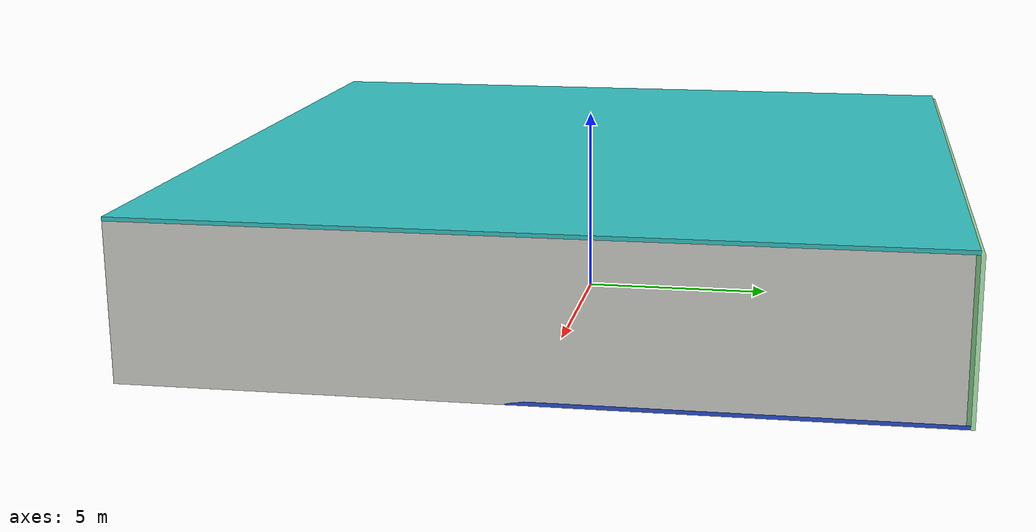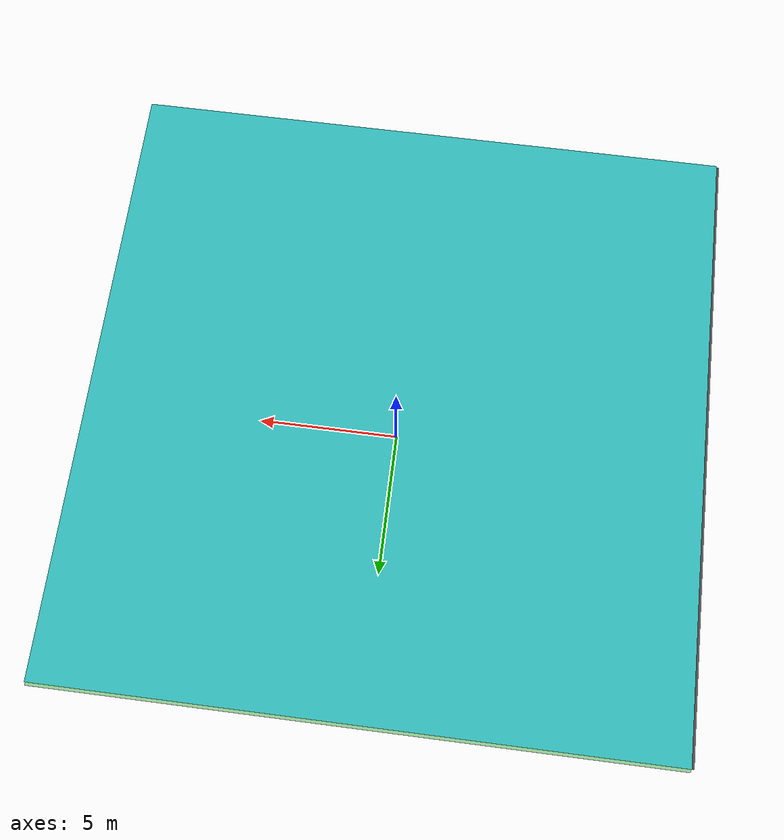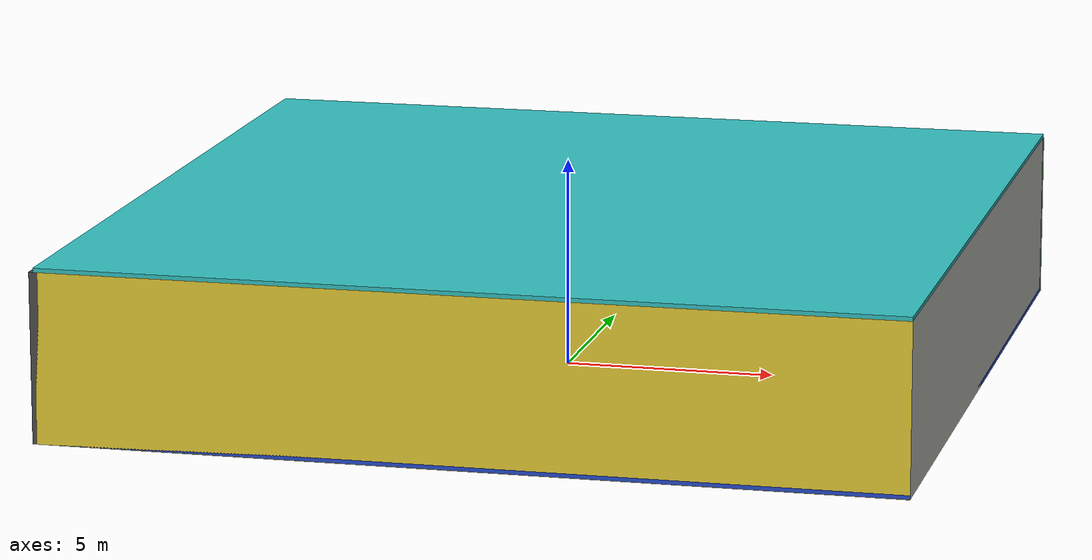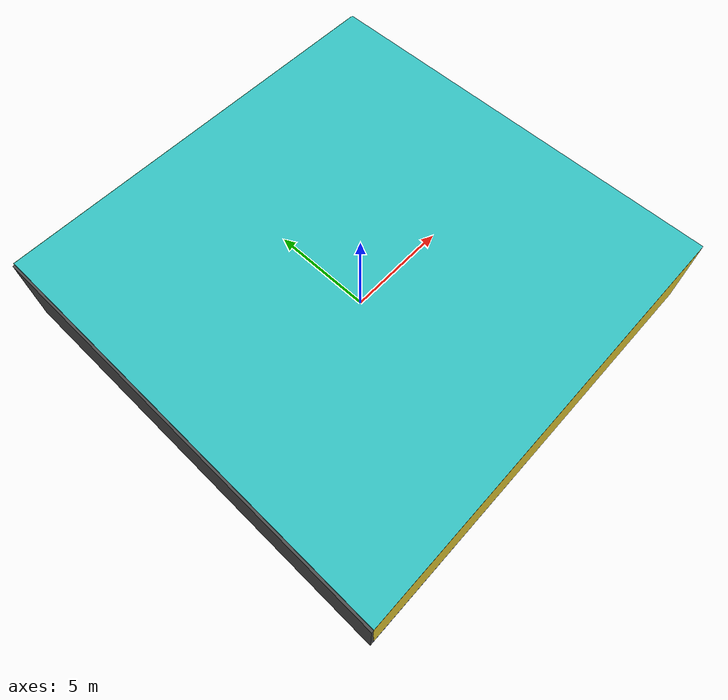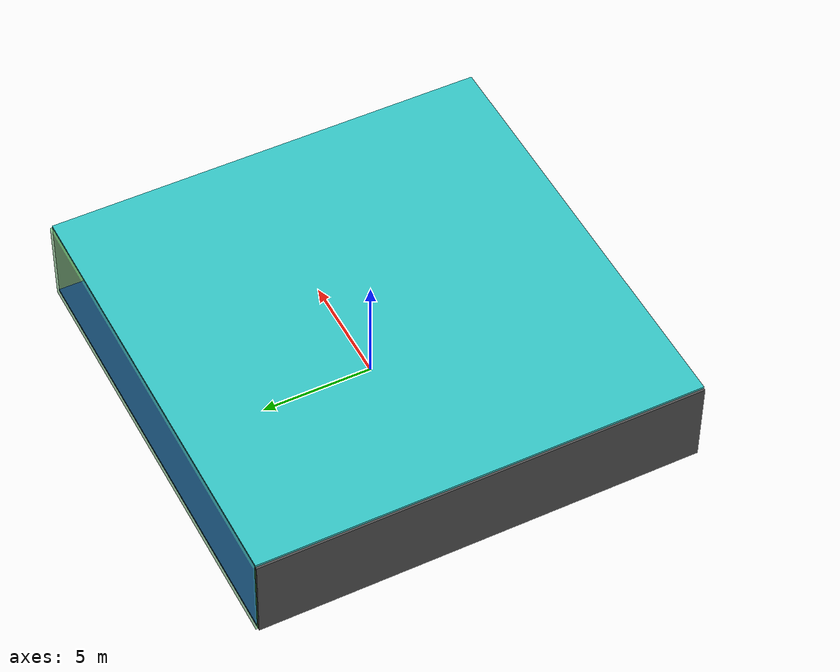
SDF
<sdf version="1.4">
 <world name="default">
  <physics type="ode">
   <max_step_size>0.001</max_step_size>
   <real_time_factor>1</real_time_factor>
   <real_time_update_rate>1000</real_time_update_rate>
   <gravity>0 0 -9.8</gravity>
  </physics>
  <scene><ambient>0.4 0.4 0.4 1</ambient><background>0.7 0.7 0.7 1</background><shadows>1</shadows></scene>
  <model name="Surrounding">
   <static>1</static>
   <link name="Ceiling">
    <collision name="Ceiling_Collision"><geometry><box><size>20 20 0.1</size></box></geometry></collision>
    <visual name="Ceiling_Visual">
     <geometry><box><size>20 20 0.1</size></box></geometry>
     <material>
      <script><uri>file://media/materials/scripts/gazebo.material</uri><name>Gazebo/Turquoise</name></script>
     </material>
    </visual>
    <pose>0 0 4.05 0 0 0</pose>
   </link>
   <link name="Wall_South">
    <collision name="Wall_South_Collision">
     <geometry><box><size>20 0 4</size></box></geometry>
     <pose>0 0 2 0 -0 0</pose>
    </collision>
    <visual name="Wall_South_Visual">
     <pose>0 0 2 0 -0 0</pose>
     <geometry><box><size>20 0 4</size></box></geometry>
     <material>
      <script><uri>file://media/materials/scripts/gazebo.material</uri><name>Gazebo/ZincYellow</name></script>
     </material>
    </visual>
    <velocity_decay><linear>0</linear><angular>0</angular></velocity_decay>
    <pose>0 -10 0 0 -0 0</pose>
   </link>
   <link name="Wall_East">
    <collision name="Wall_21_Collision">
     <geometry><box><size>20 0 4</size></box></geometry>
     <pose>0 0 2 0 -0 0</pose>
    </collision>
    <visual name="Wall_21_Visual">
     <pose>0 0 2 0 -0 0</pose>
     <geometry><box><size>20 0 4</size></box></geometry>
     <material>
      <script><uri>file://media/materials/scripts/gazebo.material</uri><name>Gazebo/CeilingTiled</name></script>
     </material>
    </visual>
    <velocity_decay><linear>0</linear><angular>0</angular></velocity_decay>
    <pose>10 0 0 0 -0 1.5708</pose>
   </link>
   <link name="Wall_North">
    <collision name="Wall_22_Collision">
     <geometry><box><size>20 0.2 4</size></box></geometry>
     <pose>0 0 2 0 -0 0</pose>
    </collision>
    <visual name="Wall_22_Visual">
     <pose>0 0 2 0 -0 0</pose>
     <geometry><box><size>20 0.2 4</size></box></geometry>
     <material>
      <script><uri>file://media/materials/scripts/gazebo.material</uri><name>Gazebo/GreenTransparent</name></script>
     </material>
    </visual>
    <velocity_decay><linear>0</linear><angular>0</angular></velocity_decay>
    <pose>0 10 0 0 -0 0</pose>
   </link>
   <link name="Wall_West">
    <collision name="Wall_23_Collision">
     <geometry><box><size>20 0.2 4</size></box></geometry>
     <pose>0 0 2 0 -0 0</pose>
    </collision>
    <visual name="Wall_23_Visual">
     <pose>0 0 2 0 -0 0</pose>
     <geometry><box><size>20 0.2 4</size></box></geometry>
     <material>
      <script><uri>file://media/materials/scripts/gazebo.material</uri><name>Gazebo/Road</name></script>
     </material>
    </visual>
    <velocity_decay><linear>0</linear><angular>0</angular></velocity_decay>
    <pose>-10 0 0 0 0 -1.5708</pose>
   </link>
   <link name="Ground_link">
    <collision name="collision">
     <pose>0 0 .05 0 -0 0</pose>
     <geometry><box><size>20 20 0.1</size></box></geometry>
    </collision>
    <visual name="visual">
     <pose>0 0 .05 0 -0 0</pose>
     <geometry><box><size>20 20 0.1</size></box></geometry>
     <material>
      <script><uri>file://media/materials/scripts/gazebo.material</uri><name>Gazebo/BlueLaser</name></script>
     </material>
    </visual>
   </link>
   <static>1</static>
  </model>
  <spherical_coordinates>
   <surface_model>EARTH_WGS84</surface_model>
   <latitude_deg>0</latitude_deg>
   <longitude_deg>0</longitude_deg>
   <elevation>0</elevation>
   <heading_deg>0</heading_deg>
  </spherical_coordinates>
  <light name="lightball_0" type="diffuse">
   <diffuse>0.8 0.8 0.8 1</diffuse>
   <specular>0.2 0.2 0.2 1</specular>
   <attenuation>
    <range>100</range>
    <constant>0.7</constant>
    <linear>0.01</linear>
    <quadratic>0.001</quadratic>
   </attenuation>
   <direction>-0.5 0.1 -0.9</direction>
   <pose>4.33929590671 4.99112880412 1.9238462374 0 0 0</pose>
  </light>
  <light name="lightball_1" type="diffuse">
   <diffuse>0.8 0.8 0.8 1</diffuse>
   <specular>0.2 0.2 0.2 1</specular>
   <attenuation>
    <range>100</range>
    <constant>0.7</constant>
    <linear>0.01</linear>
    <quadratic>0.001</quadratic>
   </attenuation>
   <direction>-0.5 0.1 -0.9</direction>
   <pose>6.16327112494 -7.11508010884 1.40741019209 0 0 0</pose>
  </light>
  <light name="lightball_2" type="diffuse">
   <diffuse>0.8 0.8 0.8 1</diffuse>
   <specular>0.2 0.2 0.2 1</specular>
   <attenuation>
    <range>100</range>
    <constant>0.7</constant>
    <linear>0.01</linear>
    <quadratic>0.001</quadratic>
   </attenuation>
   <direction>-0.5 0.1 -0.9</direction>
   <pose>-0.376357403362 -5.62905709473 3.41418604243 0 0 0</pose>
  </light>
  <light name="lightball_3" type="diffuse">
   <diffuse>0.8 0.8 0.8 1</diffuse>
   <specular>0.2 0.2 0.2 1</specular>
   <attenuation>
    <range>100</range>
    <constant>0.7</constant>
    <linear>0.01</linear>
    <quadratic>0.001</quadratic>
   </attenuation>
   <direction>-0.5 0.1 -0.9</direction>
   <pose>6.05139655527 9.34792989142 2.9736816012 0 0 0</pose>
  </light>
  <light name="lightball_4" type="diffuse">
   <diffuse>0.8 0.8 0.8 1</diffuse>
   <specular>0.2 0.2 0.2 1</specular>
   <attenuation>
    <range>100</range>
    <constant>0.7</constant>
    <linear>0.01</linear>
    <quadratic>0.001</quadratic>
   </attenuation>
   <direction>-0.5 0.1 -0.9</direction>
   <pose>-3.34167047395 4.87268386588 1.87027798583 0 0 0</pose>
  </light>
  <light name="lightball_5" type="diffuse">
   <diffuse>0.8 0.8 0.8 1</diffuse>
   <specular>0.2 0.2 0.2 1</specular>
   <attenuation>
    <range>100</range>
    <constant>0.7</constant>
    <linear>0.01</linear>
    <quadratic>0.001</quadratic>
   </attenuation>
   <direction>-0.5 0.1 -0.9</direction>
   <pose>9.83315628973 -1.64379171181 0.932661661064 0 0 0</pose>
  </light>
  <include><uri>model://table</uri><pose>-2.52189660515 -0.627005629123 0 0 0 1.21296460736</pose></include>
  <include>
   <uri>model://textured_shapes</uri>
   <pose>1.42854516741 1.38383986283 0 0 0 0.980182752546</pose>
  </include>
 </world>
</sdf>

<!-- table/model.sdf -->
<sdf version="1.5">
  <model name="table">
    <static>true</static>
    <link name="link">
      <collision name="surface">
        <pose>0 0 1.0 0 0 0</pose>
        <geometry>
          <box>
            <size>1.5 0.8 0.03</size>
          </box>
        </geometry>
        <surface>
          <friction>
            <ode>
              <mu>0.6</mu>
              <mu2>0.6</mu2>
            </ode>
          </friction>
        </surface>
      </collision>
      <visual name="visual1">
        <pose>0 0 1.0 0 0 0</pose>
        <geometry>
          <box>
            <size>1.5 0.8 0.03</size>
          </box>
        </geometry>
        <material>
          <script>
            <uri>model://media/materials/scripts/gazebo.material</uri>
            <name>Gazebo/Wood</name>
          </script>
        </material>
      </visual>
      <collision name="front_left_leg">
        <pose>0.68 0.38 0.5 0 0 0</pose>
        <geometry>
          <cylinder>
            <radius>0.02</radius>
            <length>1.0</length>
          </cylinder>
        </geometry>
      </collision>
      <visual name="front_left_leg">
        <pose>0.68 0.38 0.5 0 0 0</pose>
        <geometry>
          <cylinder>
            <radius>0.02</radius>
            <length>1.0</length>
          </cylinder>
        </geometry>
        <material>
          <script>
            <uri>model://media/materials/scripts/gazebo.material</uri>
            <name>Gazebo/Grey</name>
          </script>
        </material>
      </visual>
      <collision name="front_right_leg">
        <pose>0.68 -0.38 0.5 0 0 0</pose>
        <geometry>
          <cylinder>
            <radius>0.02</radius>
            <length>1.0</length>
          </cylinder>
        </geometry>
      </collision>
      <visual name="front_right_leg">
        <pose>0.68 -0.38 0.5 0 0 0</pose>
        <geometry>
          <cylinder>
            <radius>0.02</radius>
            <length>1.0</length>
          </cylinder>
        </geometry>
        <material>
          <script>
            <uri>model://media/materials/scripts/gazebo.material</uri>
            <name>Gazebo/Grey</name>
          </script>
        </material>
      </visual>
      <collision name="back_right_leg">
        <pose>-0.68 -0.38 0.5 0 0 0</pose>
        <geometry>
          <cylinder>
            <radius>0.02</radius>
            <length>1.0</length>
          </cylinder>
        </geometry>
      </collision>
      <visual name="back_right_leg">
        <pose>-0.68 -0.38 0.5 0 0 0</pose>
        <geometry>
          <cylinder>
            <radius>0.02</radius>
            <length>1.0</length>
          </cylinder>
        </geometry>
        <material>
          <script>
            <uri>model://media/materials/scripts/gazebo.material</uri>
            <name>Gazebo/Grey</name>
          </script>
        </material>
      </visual>
      <collision name="back_left_leg">
        <pose>-0.68 0.38 0.5 0 0 0</pose>
        <geometry>
          <cylinder>
            <radius>0.02</radius>
            <length>1.0</length>
          </cylinder>
        </geometry>
      </collision>
      <visual name="back_left_leg">
        <pose>-0.68 0.38 0.5 0 0 0</pose>
        <geometry>
          <cylinder>
            <radius>0.02</radius>
            <length>1.0</length>
          </cylinder>
        </geometry>
        <material>
          <script>
            <uri>model://media/materials/scripts/gazebo.material</uri>
            <name>Gazebo/Grey</name>
          </script>
        </material>
      </visual>
    </link>
  </model>
</sdf>

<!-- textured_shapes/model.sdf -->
<sdf version="1.6">
  <model name="textured_shapes">
    <pose>0 0 0.5 0 0 0</pose>
    <link name="box">
      <pose>0 -1.5 0 0 0 0</pose>
      <collision name="collision">
        <geometry>
          <box>
            <size>1 1 1</size>
          </box>
        </geometry>
      </collision>
      <visual name="visual">
        <geometry>
          <box>
            <size>1 1 1</size>
          </box>
        </geometry>
        <material>
          <script>
            <uri>model://../model_source/models/textured_shapes/materials/scripts</uri>
            <uri>model://../model_source/models/textured_shapes/materials/textures</uri>
            <name>TexturedShape/Squares</name>
          </script>
        </material>
      </visual>
    </link>
    <link name="sphere">
      <collision name="collision">
        <geometry>
          <sphere>
            <radius>0.5</radius>
          </sphere>
        </geometry>
      </collision>
      <visual name="visual">
        <geometry>
          <sphere>
            <radius>0.5</radius>
          </sphere>
        </geometry>
        <material>
          <script>
            <uri>model://../model_source/models/textured_shapes/materials/scripts</uri>
            <uri>model://../model_source/models/textured_shapes/materials/textures</uri>
            <name>TexturedShape/Squares</name>
          </script>
        </material>
      </visual>
    </link>
    <link name="cylinder">
      <pose>0 1.5 0 0 0 0</pose>
      <collision name="collision">
        <geometry>
          <cylinder>
            <radius>0.5</radius>
            <length>1</length>
          </cylinder>
        </geometry>
      </collision>
      <visual name="visual">
        <geometry>
          <cylinder>
            <radius>0.5</radius>
            <length>1</length>
          </cylinder>
        </geometry>
        <material>
          <script>
            <uri>model://../model_source/models/textured_shapes/materials/scripts</uri>
            <uri>model://../model_source/models/textured_shapes/materials/textures</uri>
            <name>TexturedShape/Squares</name>
          </script>
        </material>
      </visual>
    </link>
  </model>
</sdf>
